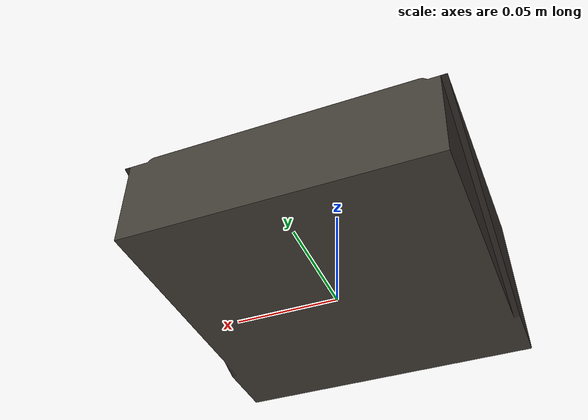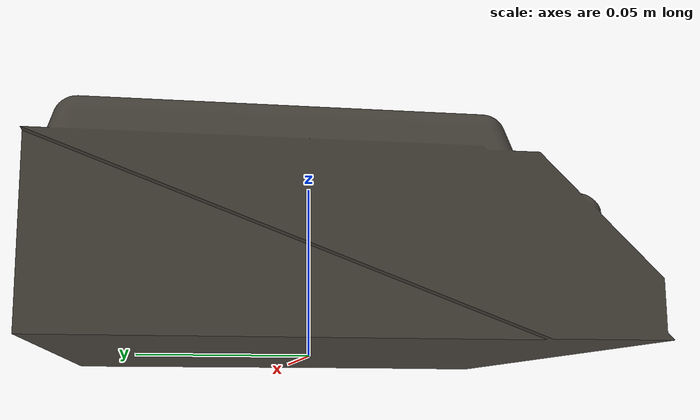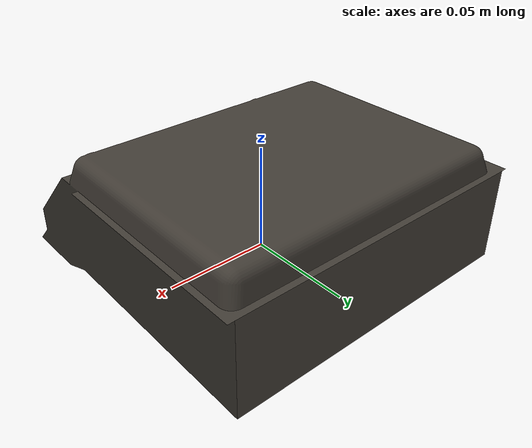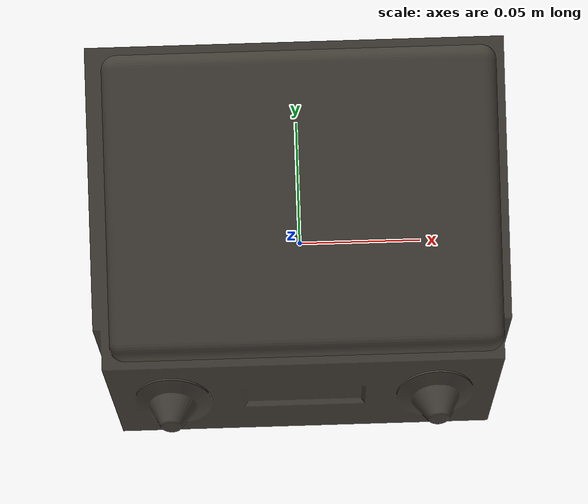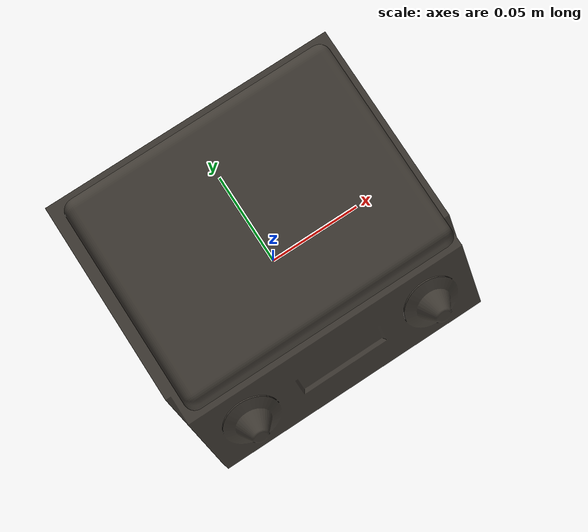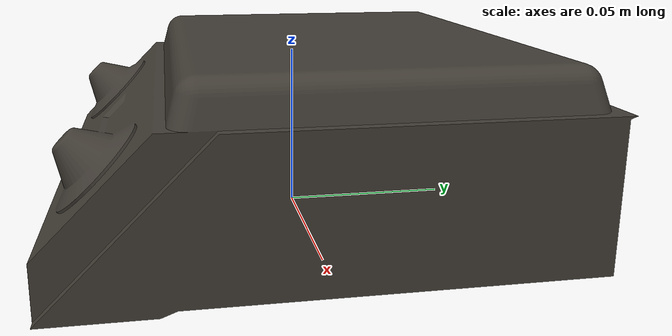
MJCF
<?xml version="1.0" ?>
<mujoco model="magnetic_stir_plate">
  <asset>
    <material name="wire_088088225" specular="0.4000000000000001" shininess="0.001" rgba="0.25882353 0.23921569 0.21176471 1.0"/>
    <mesh file="magnetic_stir_plate.obj" scale="0.004615384615384615 0.004615384615384615 0.004615384615384615"/>
    <mesh file="magnetic_stir_plate/magnetic_stir_plate_collision_0.obj" scale="0.004615384615384615 0.004615384615384615 0.004615384615384615"/>
    <mesh file="magnetic_stir_plate/magnetic_stir_plate_collision_1.obj" scale="0.004615384615384615 0.004615384615384615 0.004615384615384615"/>
    <mesh file="magnetic_stir_plate/magnetic_stir_plate_collision_2.obj" scale="0.004615384615384615 0.004615384615384615 0.004615384615384615"/>
    <mesh file="magnetic_stir_plate/magnetic_stir_plate_collision_3.obj" scale="0.004615384615384615 0.004615384615384615 0.004615384615384615"/>
    <mesh file="magnetic_stir_plate/magnetic_stir_plate_collision_4.obj" scale="0.004615384615384615 0.004615384615384615 0.004615384615384615"/>
    <mesh file="magnetic_stir_plate/magnetic_stir_plate_collision_5.obj" scale="0.004615384615384615 0.004615384615384615 0.004615384615384615"/>
    <mesh file="magnetic_stir_plate/magnetic_stir_plate_collision_6.obj" scale="0.004615384615384615 0.004615384615384615 0.004615384615384615"/>
    <mesh file="magnetic_stir_plate/magnetic_stir_plate_collision_7.obj" scale="0.004615384615384615 0.004615384615384615 0.004615384615384615"/>
    <mesh file="magnetic_stir_plate/magnetic_stir_plate_collision_8.obj" scale="0.004615384615384615 0.004615384615384615 0.004615384615384615"/>
    <mesh file="magnetic_stir_plate/magnetic_stir_plate_collision_9.obj" scale="0.004615384615384615 0.004615384615384615 0.004615384615384615"/>
  </asset>
  <worldbody>
    <body name="magnetic_stir_plate">
      <inertial pos="0 0 0.027404" mass="0.02" diaginertia="0.0008 0.0008 0.0005"/>
      <geom material="wire_088088225" mesh="magnetic_stir_plate" class="visual"/>
      <geom mesh="magnetic_stir_plate_collision_0" rgba="0.29188588615162214 0.08414623422462175 0.039275396849361655 1" class="collision"/>
      <geom mesh="magnetic_stir_plate_collision_1" rgba="0.6736569947613912 0.6471817667548182 0.222326454412073 1" class="collision"/>
      <geom mesh="magnetic_stir_plate_collision_2" rgba="0.9785882729329496 0.42274478499731205 0.10119012705330299 1" class="collision"/>
      <geom mesh="magnetic_stir_plate_collision_3" rgba="0.5846967615974632 0.15014917664490612 0.6261987305193238 1" class="collision"/>
      <geom mesh="magnetic_stir_plate_collision_4" rgba="0.4224139193544896 0.4202650805869974 0.5525751029087675 1" class="collision"/>
      <geom mesh="magnetic_stir_plate_collision_5" rgba="0.29253962428486524 0.6747014859300207 0.44946243502724226 1" class="collision"/>
      <geom mesh="magnetic_stir_plate_collision_6" rgba="0.030574921864962135 0.4883363504773508 0.07152559586561602 1" class="collision"/>
      <geom mesh="magnetic_stir_plate_collision_7" rgba="0.3083440536249502 0.2739594012739932 0.6256988408009572 1" class="collision"/>
      <geom mesh="magnetic_stir_plate_collision_8" rgba="0.007640514916693264 0.07094103516743167 0.8121396330905554 1" class="collision"/>
      <geom mesh="magnetic_stir_plate_collision_9" rgba="0.14995770579141032 0.8664504039602596 0.02168187091232454 1" class="collision"/>
      <site class="grasppoint" pos="0.0000 0.0000 0.0329"/>
      <site class="grasppoint" pos="0.0000 0.0000 0.0438"/>
      <site class="grasppoint" pos="0.0000 0.0000 0.0521"/>
    </body>
  </worldbody>
  <compiler boundmass="0.015" boundinertia="1e-05" angle="radian"/>
  <default>
    <default class="visual">
      <geom group="2" type="mesh" contype="0" conaffinity="0" density="50"/>
    </default>
    <default class="collision">
      <geom group="3" type="mesh" density="50" friction="1.5 0.1 0.1" solimp="0.9 0.95 0.001" solref="0.02 1"/>
    </default>
    <default class="grasppoint">
      <site type="sphere" size="0.005" group="4" rgba="0 0 1 1"/>
    </default>
  </default>
</mujoco>
